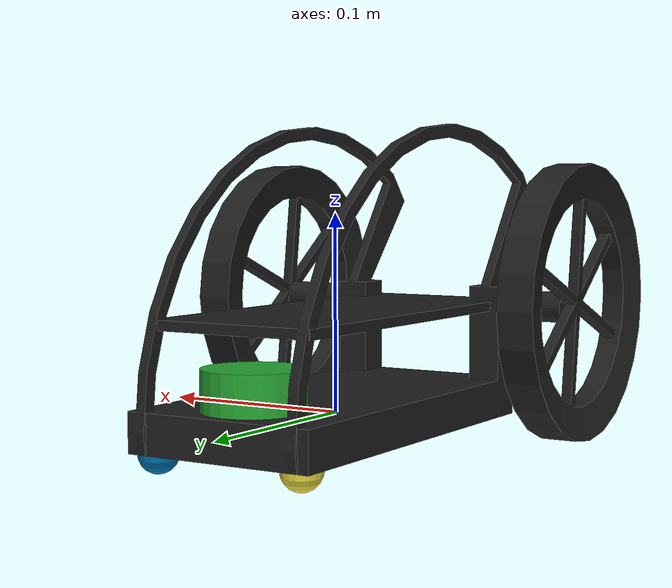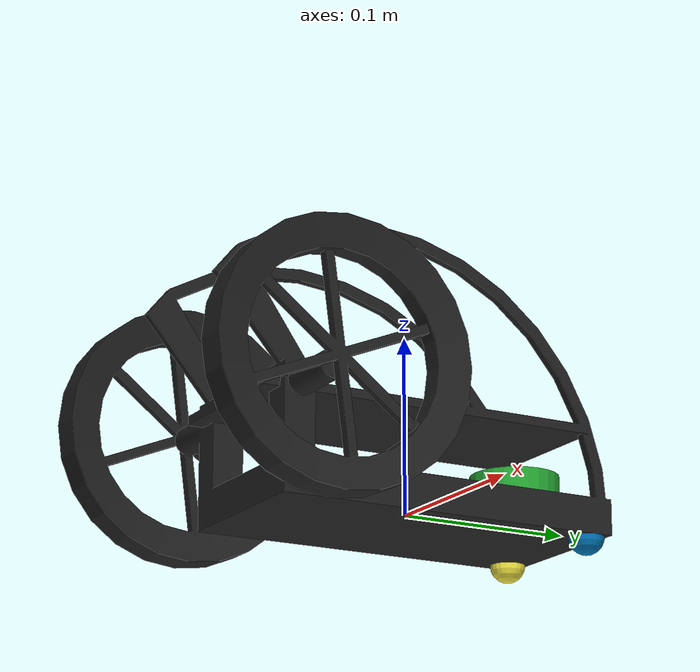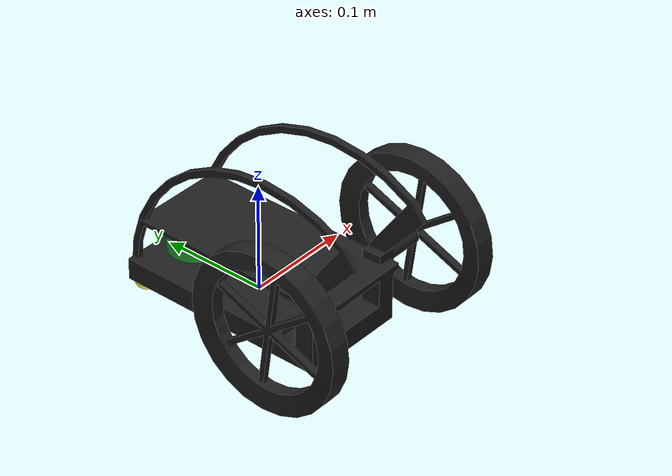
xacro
<?xml version="1.0" ?>
<robot name="my_own_robot" xmlns:xacro="http://ros.org/wiki/xacro">

  <gazebo reference="chassis">
    <material>Gazebo/Yellow</material>
  </gazebo>
  <gazebo reference="wheel_left_link">
    <material>Gazebo/Black</material>
  </gazebo>
  <gazebo reference="wheel_right_link">
    <material>Gazebo/Black</material>
  </gazebo>
  <gazebo reference="hokuyo_link">
    <material>Gazebo/green</material>
  </gazebo>

  <gazebo>
    <plugin name="turtlebot3_burger_controller" filename="libgazebo_ros_diff_drive.so">
      <commandTopic>cmd_vel</commandTopic>
      <odometryTopic>odom</odometryTopic>
      <odometryFrame>odom</odometryFrame>
      <odometrySource>world</odometrySource>
      <publishOdomTF>true</publishOdomTF>
      <robotBaseFrame>chassis</robotBaseFrame>
      <publishWheelTF>false</publishWheelTF>
      <publishTf>true</publishTf>
      <publishWheelJointState>true</publishWheelJointState>
      <legacyMode>false</legacyMode>
      <updateRate>30</updateRate>
      <leftJoint>wheel_left_joint</leftJoint>
      <rightJoint>wheel_right_joint</rightJoint>
      <wheelSeparation>0.16</wheelSeparation>
      <wheelDiameter>0.14</wheelDiameter>
      <wheelAcceleration>1</wheelAcceleration>
      <wheelTorque>10</wheelTorque>
      <rosDebugLevel>na</rosDebugLevel>
    </plugin>
  </gazebo>

    <!-- LIDAR -->
  <gazebo reference="hokuyo_link">
    <sensor type="gpu_ray" name="angle1">
      <pose>0 0 0 0 0 0</pose>
      <visualize>false</visualize>
      <update_rate>30</update_rate>
      <ray>
        <scan>
          <horizontal>
            <samples>500</samples>
            <resolution>1</resolution>
            <min_angle>0.6537</min_angle>
            <max_angle>2.4954</max_angle>
          </horizontal>
        </scan>
        <range>
          <min>0.03</min>
          <max>10.0</max>
          <resolution>0.01</resolution>
        </range>
        <noise>
          <type>gaussian</type>
          <mean>0.0</mean>
          <stddev>0.01</stddev>
        </noise>
      </ray>
      <plugin name="gazebo_ros_head_hokuyo_controller" filename="libgazebo_ros_gpu_laser.so">
        <topicName>/my_own_robot/laser/scan</topicName>
        <frameName>hokuyo_link</frameName>
      </plugin>
    </sensor>
  </gazebo>

  <!-- robot -->
  <link name="chassis">
    <visual>
      <origin xyz="0 0 0.0" rpy="0 0 0"/>
      <geometry>
        <mesh filename="package://my_own_robot/meshes/bases/vehicle_stage.stl" scale="1 1 1"/>
      </geometry>
      <material name="light_black"/>
    </visual>

    <collision>
      <origin xyz="0 0 0.0" rpy="0 0 0"/>
      <geometry>
        <mesh filename="package://my_own_robot/meshes/bases/vehicle_stage.stl" scale="1 1 1"/>
      </geometry>
    </collision>

    <inertial>
      <origin xyz="0 0 0" rpy="0 0 0"/>
      <mass value="1"/>
      <inertia ixx="1.1175580e-05" ixy="-4.2369783e-11" ixz="-5.9381719e-09"
               iyy="1.1192413e-05" iyz="-1.4400107e-11"
               izz="2.0712558e-05" />
    </inertial>
  </link>

  <joint name="wheel_left_joint" type="continuous">
    <parent link="chassis"/>
    <child link="wheel_left_link"/>
    <origin xyz="-0.09 -0.09 0.053" rpy="0 0 0"/>
    <axis xyz="1 0 0"/>
  </joint>

  <link name="wheel_left_link">
    <visual>
      <origin xyz="0 0 0" rpy="0 0 0"/>
      <geometry>
        <mesh filename="package://my_own_robot/meshes/bases/roue_stage.stl" scale="1 1 1"/>
      </geometry>
      <material name="dark"/>
    </visual>

    <collision>
      <origin xyz="0 0 0" rpy="0 0 0"/>
      <geometry>
        <mesh filename="package://my_own_robot/meshes/bases/roue_stage.stl" scale="1 1 1"/>
      </geometry>
    </collision>

    <inertial>
      <origin xyz="0 0 0" />
      <mass value="0.5" />
      <inertia ixx="1e-6" ixy="0" ixz="0" iyy="1e-6" iyz="0" izz="1e-6" />
      </inertial>
  </link>

  <joint name="wheel_right_joint" type="continuous">
    <parent link="chassis"/>
    <child link="wheel_right_link"/>
    <origin xyz="0.09 -0.090 0.053" rpy="0 0 0"/>
    <axis xyz="1 0 0"/>
  </joint>

  <link name="wheel_right_link">
    <visual>
      <origin xyz="0 0 0" rpy="0 0 0"/>
      <geometry>
        <mesh filename="package://my_own_robot/meshes/bases/roue_stage.stl" scale="1 1 1"/>
      </geometry>
      <material name="dark"/>
    </visual>

    <collision>
      <origin xyz="0 0 0" rpy="0 0 0"/>
      <geometry>
        <mesh filename="package://my_own_robot/meshes/bases/roue_stage.stl" scale="1 1 1"/>
      </geometry>
    </collision>

    <inertial>
      <origin xyz="0 0 0" />
      <mass value="0.5" />
      <inertia ixx="1e-6" ixy="0" ixz="0" iyy="1e-6" iyz="0" izz="1e-6" />
      </inertial>
  </link>

  <joint name="left_joint" type="continuous">
    <parent link="chassis"/>
    <child link="left_link"/>
    <origin xyz="-0.04 0.090 -0.01" rpy="0 0 0"/>
    <axis xyz="1 1 1"/>
  </joint>

  <link name="left_link">
    <visual>
      <origin xyz="0 0 0" rpy="0 0 0"/>
      <geometry>
        <sphere radius="0.01"/>
      </geometry>
      <material name="dark"/>
    </visual>

    <collision>
      <origin xyz="0 0 0" rpy="0 0 0"/>
      <geometry>
        <sphere radius="0.01"/>
      </geometry>
    </collision>

    <inertial>
      <origin xyz="0 0 0" />
      <mass value="0.05" />
      <inertia ixx="1e-6" ixy="0" ixz="0" iyy="1e-6" iyz="0" izz="1e-6" />
      </inertial>
  </link>

  <joint name="right_joint" type="continuous">
    <parent link="chassis"/>
    <child link="right_link"/>
    <origin xyz="0.04 0.090 -0.01" rpy="0 0 0"/>
    <axis xyz="1 1 1"/>
  </joint>

  <link name="right_link">
    <visual>
      <origin xyz="0 0 0" rpy="0 0 0"/>
      <geometry>
        <sphere radius="0.01"/>
      </geometry>
      <material name="dark"/>
    </visual>

    <collision>
      <origin xyz="0 0 0" rpy="0 0 0"/>
      <geometry>
        <sphere radius="0.01"/>
      </geometry>
    </collision>

    <inertial>
      <origin xyz="0 0 0" />
      <mass value="0.05" />
      <inertia ixx="1e-6" ixy="0" ixz="0" iyy="1e-6" iyz="0" izz="1e-6" />
      </inertial>
  </link>

  <!-- Hokuyo Laser -->
  <joint name="hokuyo_joint" type="fixed">
    <axis xyz="0 1 0" />
    <origin xyz="0 0.07 0.02" rpy="0 0 0"/>
    <parent link="chassis"/>
    <child link="hokuyo_link"/>
  </joint>

  <link name="hokuyo_link">
    <collision>
      <origin xyz="0 0 0" rpy="0 0 0"/>
      <geometry>
       <cylinder length="0.02" radius="0.025"/>
      </geometry>
    </collision>

    <visual>
      <origin xyz="0 0 0" rpy="0 0 0"/>
      <geometry>
        <cylinder length="0.02" radius="0.025"/>
      </geometry>
    </visual>

    <inertial>
      <mass value="1e-5" />
      <origin xyz="0 0 0" rpy="0 0 0"/>
      <inertia ixx="1e-6" ixy="0" ixz="0" iyy="1e-6" iyz="0" izz="1e-6" />
    </inertial>
  </link>

</robot>
